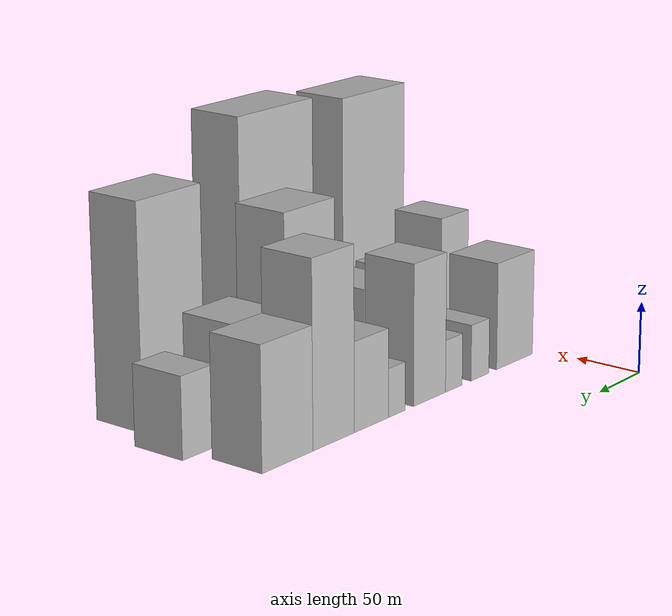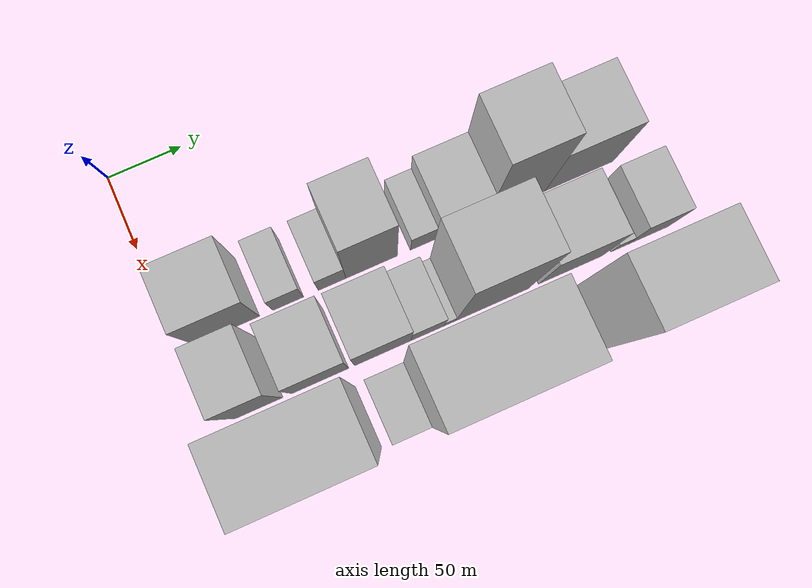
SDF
<sdf version="1.6">
 <world name="default">
  <model name="building_19">
   <static>1</static>
   <pose>100.0000 32.2616 0 0.000000 0.000000 0.000000</pose>
   <link name="link">
    <pose>0 0 37.50 0 0 0</pose>
    <collision name="collision"><geometry><box><size>40.0000 43.1738 75.0000</size></box></geometry></collision>
    <visual name="visual">
     <cast_shadows>0</cast_shadows>
     <geometry><box><size>40.0000 43.1738 75.0000</size></box></geometry>
     <material>
      <script>
       <uri>model://HANNAS_wall/materials/scripts</uri>
       <uri>model://HANNAS_wall/materials/textures</uri>
       <name>vrc/HANNAS_wall</name>
      </script>
     </material>
    </visual>
   </link>
  </model>
  <model name="building_20">
   <static>1</static>
   <pose>100.0000 73.1810 0 0.000000 0.000000 0.000000</pose>
   <link name="link">
    <pose>0 0 19.50 0 0 0</pose>
    <collision name="collision"><geometry><box><size>40.0000 20.6649 39.0000</size></box></geometry></collision>
    <visual name="visual">
     <cast_shadows>0</cast_shadows>
     <geometry><box><size>40.0000 20.6649 39.0000</size></box></geometry>
     <material>
      <script>
       <uri>model://HANNAS_wall/materials/scripts</uri>
       <uri>model://HANNAS_wall/materials/textures</uri>
       <name>vrc/HANNAS_wall</name>
      </script>
     </material>
    </visual>
   </link>
  </model>
  <model name="building_21">
   <static>1</static>
   <pose>100.0000 102.8595 0 0.000000 0.000000 0.000000</pose>
   <link name="link">
    <pose>0 0 18.00 0 0 0</pose>
    <collision name="collision"><geometry><box><size>40.0000 18.6922 36.0000</size></box></geometry></collision>
    <visual name="visual">
     <cast_shadows>0</cast_shadows>
     <geometry><box><size>40.0000 18.6922 36.0000</size></box></geometry>
     <material>
      <script>
       <uri>model://HANNAS_wall/materials/scripts</uri>
       <uri>model://HANNAS_wall/materials/textures</uri>
       <name>vrc/HANNAS_wall</name>
      </script>
     </material>
    </visual>
   </link>
  </model>
  <model name="building_22">
   <static>1</static>
   <pose>100.0000 129.7020 0 0.000000 0.000000 0.000000</pose>
   <link name="link">
    <pose>0 0 48.00 0 0 0</pose>
    <collision name="collision"><geometry><box><size>40.0000 34.9927 96.0000</size></box></geometry></collision>
    <visual name="visual">
     <cast_shadows>0</cast_shadows>
     <geometry><box><size>40.0000 34.9927 96.0000</size></box></geometry>
     <material>
      <script>
       <uri>model://HANNAS_wall/materials/scripts</uri>
       <uri>model://HANNAS_wall/materials/textures</uri>
       <name>vrc/HANNAS_wall</name>
      </script>
     </material>
    </visual>
   </link>
  </model>
  <model name="building_23">
   <static>1</static>
   <pose>100.0000 164.9879 0 0.000000 0.000000 0.000000</pose>
   <link name="link">
    <pose>0 0 16.50 0 0 0</pose>
    <collision name="collision"><geometry><box><size>40.0000 17.5790 33.0000</size></box></geometry></collision>
    <visual name="visual">
     <cast_shadows>0</cast_shadows>
     <geometry><box><size>40.0000 17.5790 33.0000</size></box></geometry>
     <material>
      <script>
       <uri>model://HANNAS_wall/materials/scripts</uri>
       <uri>model://HANNAS_wall/materials/textures</uri>
       <name>vrc/HANNAS_wall</name>
      </script>
     </material>
    </visual>
   </link>
  </model>
  <model name="building_24">
   <static>1</static>
   <pose>100.0000 191.1892 0 0.000000 0.000000 0.000000</pose>
   <link name="link">
    <pose>0 0 30.00 0 0 0</pose>
    <collision name="collision"><geometry><box><size>40.0000 34.8237 60.0000</size></box></geometry></collision>
    <visual name="visual">
     <cast_shadows>0</cast_shadows>
     <geometry><box><size>40.0000 34.8237 60.0000</size></box></geometry>
     <material>
      <script>
       <uri>model://HANNAS_wall/materials/scripts</uri>
       <uri>model://HANNAS_wall/materials/textures</uri>
       <name>vrc/HANNAS_wall</name>
      </script>
     </material>
    </visual>
   </link>
  </model>
  <model name="building_25">
   <static>1</static>
   <pose>100.0000 228.8745 0 0.000000 0.000000 0.000000</pose>
   <link name="link">
    <pose>0 0 61.50 0 0 0</pose>
    <collision name="collision"><geometry><box><size>40.0000 40.5469 123.0000</size></box></geometry></collision>
    <visual name="visual">
     <cast_shadows>0</cast_shadows>
     <geometry><box><size>40.0000 40.5469 123.0000</size></box></geometry>
     <material>
      <script>
       <uri>model://HANNAS_wall/materials/scripts</uri>
       <uri>model://HANNAS_wall/materials/textures</uri>
       <name>vrc/HANNAS_wall</name>
      </script>
     </material>
    </visual>
   </link>
  </model>
  <model name="building_26">
   <static>1</static>
   <pose>100.0000 273.0367 0 0.000000 0.000000 0.000000</pose>
   <link name="link">
    <pose>0 0 40.50 0 0 0</pose>
    <collision name="collision"><geometry><box><size>40.0000 47.7774 81.0000</size></box></geometry></collision>
    <visual name="visual">
     <cast_shadows>0</cast_shadows>
     <geometry><box><size>40.0000 47.7774 81.0000</size></box></geometry>
     <material>
      <script>
       <uri>model://HANNAS_wall/materials/scripts</uri>
       <uri>model://HANNAS_wall/materials/textures</uri>
       <name>vrc/HANNAS_wall</name>
      </script>
     </material>
    </visual>
   </link>
  </model>
  <model name="building_52">
   <static>1</static>
   <pose>152.0000 31.6889 0 0.000000 0.000000 0.000000</pose>
   <link name="link">
    <pose>0 0 48.00 0 0 0</pose>
    <collision name="collision"><geometry><box><size>40.0000 31.4053 96.0000</size></box></geometry></collision>
    <visual name="visual">
     <cast_shadows>0</cast_shadows>
     <geometry><box><size>40.0000 31.4053 96.0000</size></box></geometry>
     <material>
      <script>
       <uri>model://HANNAS_wall/materials/scripts</uri>
       <uri>model://HANNAS_wall/materials/textures</uri>
       <name>vrc/HANNAS_wall</name>
      </script>
     </material>
    </visual>
   </link>
  </model>
  <model name="building_53">
   <static>1</static>
   <pose>152.0000 72.4123 0 0.000000 0.000000 0.000000</pose>
   <link name="link">
    <pose>0 0 34.50 0 0 0</pose>
    <collision name="collision"><geometry><box><size>40.0000 38.0416 69.0000</size></box></geometry></collision>
    <visual name="visual">
     <cast_shadows>0</cast_shadows>
     <geometry><box><size>40.0000 38.0416 69.0000</size></box></geometry>
     <material>
      <script>
       <uri>model://HANNAS_wall/materials/scripts</uri>
       <uri>model://HANNAS_wall/materials/textures</uri>
       <name>vrc/HANNAS_wall</name>
      </script>
     </material>
    </visual>
   </link>
  </model>
  <model name="building_54">
   <static>1</static>
   <pose>152.0000 114.3250 0 0.000000 0.000000 0.000000</pose>
   <link name="link">
    <pose>0 0 33.00 0 0 0</pose>
    <collision name="collision"><geometry><box><size>40.0000 37.7837 66.0000</size></box></geometry></collision>
    <visual name="visual">
     <cast_shadows>0</cast_shadows>
     <geometry><box><size>40.0000 37.7837 66.0000</size></box></geometry>
     <material>
      <script>
       <uri>model://HANNAS_wall/materials/scripts</uri>
       <uri>model://HANNAS_wall/materials/textures</uri>
       <name>vrc/HANNAS_wall</name>
      </script>
     </material>
    </visual>
   </link>
  </model>
  <model name="building_55">
   <static>1</static>
   <pose>152.0000 144.5423 0 0.000000 0.000000 0.000000</pose>
   <link name="link">
    <pose>0 0 21.00 0 0 0</pose>
    <collision name="collision"><geometry><box><size>40.0000 22.6509 42.0000</size></box></geometry></collision>
    <visual name="visual">
     <cast_shadows>0</cast_shadows>
     <geometry><box><size>40.0000 22.6509 42.0000</size></box></geometry>
     <material>
      <script>
       <uri>model://HANNAS_wall/materials/scripts</uri>
       <uri>model://HANNAS_wall/materials/textures</uri>
       <name>vrc/HANNAS_wall</name>
      </script>
     </material>
    </visual>
   </link>
  </model>
  <model name="building_56">
   <static>1</static>
   <pose>152.0000 159.6334 0 0.000000 0.000000 0.000000</pose>
   <link name="link">
    <pose>0 0 9.00 0 0 0</pose>
    <collision name="collision"><geometry><box><size>40.0000 7.5313 18.0000</size></box></geometry></collision>
    <visual name="visual">
     <cast_shadows>0</cast_shadows>
     <geometry><box><size>40.0000 7.5313 18.0000</size></box></geometry>
     <material>
      <script>
       <uri>model://HANNAS_wall/materials/scripts</uri>
       <uri>model://HANNAS_wall/materials/textures</uri>
       <name>vrc/HANNAS_wall</name>
      </script>
     </material>
    </visual>
   </link>
  </model>
  <model name="building_57">
   <static>1</static>
   <pose>152.0000 188.3692 0 0.000000 0.000000 0.000000</pose>
   <link name="link">
    <pose>0 0 67.50 0 0 0</pose>
    <collision name="collision"><geometry><box><size>40.0000 49.9403 135.0000</size></box></geometry></collision>
    <visual name="visual">
     <cast_shadows>0</cast_shadows>
     <geometry><box><size>40.0000 49.9403 135.0000</size></box></geometry>
     <material>
      <script>
       <uri>model://HANNAS_wall/materials/scripts</uri>
       <uri>model://HANNAS_wall/materials/textures</uri>
       <name>vrc/HANNAS_wall</name>
      </script>
     </material>
    </visual>
   </link>
  </model>
  <model name="building_58">
   <static>1</static>
   <pose>152.0000 242.3548 0 0.000000 0.000000 0.000000</pose>
   <link name="link">
    <pose>0 0 37.50 0 0 0</pose>
    <collision name="collision"><geometry><box><size>40.0000 44.0309 75.0000</size></box></geometry></collision>
    <visual name="visual">
     <cast_shadows>0</cast_shadows>
     <geometry><box><size>40.0000 44.0309 75.0000</size></box></geometry>
     <material>
      <script>
       <uri>model://HANNAS_wall/materials/scripts</uri>
       <uri>model://HANNAS_wall/materials/textures</uri>
       <name>vrc/HANNAS_wall</name>
      </script>
     </material>
    </visual>
   </link>
  </model>
  <model name="building_59">
   <static>1</static>
   <pose>152.0000 275.8309 0 0.000000 0.000000 0.000000</pose>
   <link name="link">
    <pose>0 0 12.00 0 0 0</pose>
    <collision name="collision"><geometry><box><size>40.0000 10.9214 24.0000</size></box></geometry></collision>
    <visual name="visual">
     <cast_shadows>0</cast_shadows>
     <geometry><box><size>40.0000 10.9214 24.0000</size></box></geometry>
     <material>
      <script>
       <uri>model://HANNAS_wall/materials/scripts</uri>
       <uri>model://HANNAS_wall/materials/textures</uri>
       <name>vrc/HANNAS_wall</name>
      </script>
     </material>
    </visual>
   </link>
  </model>
  <model name="building_60">
   <static>1</static>
   <pose>152.0000 295.7614 0 0.000000 0.000000 0.000000</pose>
   <link name="link">
    <pose>0 0 27.00 0 0 0</pose>
    <collision name="collision"><geometry><box><size>40.0000 28.9395 54.0000</size></box></geometry></collision>
    <visual name="visual">
     <cast_shadows>0</cast_shadows>
     <geometry><box><size>40.0000 28.9395 54.0000</size></box></geometry>
     <material>
      <script>
       <uri>model://HANNAS_wall/materials/scripts</uri>
       <uri>model://HANNAS_wall/materials/textures</uri>
       <name>vrc/HANNAS_wall</name>
      </script>
     </material>
    </visual>
   </link>
  </model>
  <model name="building_83">
   <static>1</static>
   <pose>204.0000 10.4153 0 0.000000 0.000000 0.000000</pose>
   <link name="link">
    <pose>0 0 22.50 0 0 0</pose>
    <collision name="collision"><geometry><box><size>40.0000 23.0629 45.0000</size></box></geometry></collision>
    <visual name="visual">
     <cast_shadows>0</cast_shadows>
     <geometry><box><size>40.0000 23.0629 45.0000</size></box></geometry>
     <material>
      <script>
       <uri>model://HANNAS_wall/materials/scripts</uri>
       <uri>model://HANNAS_wall/materials/textures</uri>
       <name>vrc/HANNAS_wall</name>
      </script>
     </material>
    </visual>
   </link>
  </model>
  <model name="building_84">
   <static>1</static>
   <pose>204.0000 56.2340 0 0.000000 0.000000 0.000000</pose>
   <link name="link">
    <pose>0 0 90.00 0 0 0</pose>
    <collision name="collision"><geometry><box><size>40.0000 68.5745 180.0000</size></box></geometry></collision>
    <visual name="visual">
     <cast_shadows>0</cast_shadows>
     <geometry><box><size>40.0000 68.5745 180.0000</size></box></geometry>
     <material>
      <script>
       <uri>model://HANNAS_wall/materials/scripts</uri>
       <uri>model://HANNAS_wall/materials/textures</uri>
       <name>vrc/HANNAS_wall</name>
      </script>
     </material>
    </visual>
   </link>
  </model>
  <model name="building_85">
   <static>1</static>
   <pose>204.0000 109.8151 0 0.000000 0.000000 0.000000</pose>
   <link name="link">
    <pose>0 0 22.50 0 0 0</pose>
    <collision name="collision"><geometry><box><size>40.0000 24.5877 45.0000</size></box></geometry></collision>
    <visual name="visual">
     <cast_shadows>0</cast_shadows>
     <geometry><box><size>40.0000 24.5877 45.0000</size></box></geometry>
     <material>
      <script>
       <uri>model://HANNAS_wall/materials/scripts</uri>
       <uri>model://HANNAS_wall/materials/textures</uri>
       <name>vrc/HANNAS_wall</name>
      </script>
     </material>
    </visual>
   </link>
  </model>
  <model name="building_86">
   <static>1</static>
   <pose>204.0000 159.2760 0 0.000000 0.000000 0.000000</pose>
   <link name="link">
    <pose>0 0 93.00 0 0 0</pose>
    <collision name="collision"><geometry><box><size>40.0000 74.3343 186.0000</size></box></geometry></collision>
    <visual name="visual">
     <cast_shadows>0</cast_shadows>
     <geometry><box><size>40.0000 74.3343 186.0000</size></box></geometry>
     <material>
      <script>
       <uri>model://HANNAS_wall/materials/scripts</uri>
       <uri>model://HANNAS_wall/materials/textures</uri>
       <name>vrc/HANNAS_wall</name>
      </script>
     </material>
    </visual>
   </link>
  </model>
  <model name="building_87">
   <static>1</static>
   <pose>204.0000 207.7874 0 0.000000 0.000000 0.000000</pose>
   <link name="link">
    <pose>0 0 22.50 0 0 0</pose>
    <collision name="collision"><geometry><box><size>40.0000 22.6885 45.0000</size></box></geometry></collision>
    <visual name="visual">
     <cast_shadows>0</cast_shadows>
     <geometry><box><size>40.0000 22.6885 45.0000</size></box></geometry>
     <material>
      <script>
       <uri>model://HANNAS_wall/materials/scripts</uri>
       <uri>model://HANNAS_wall/materials/textures</uri>
       <name>vrc/HANNAS_wall</name>
      </script>
     </material>
    </visual>
   </link>
  </model>
  <model name="building_88">
   <static>1</static>
   <pose>204.0000 229.4666 0 0.000000 0.000000 0.000000</pose>
   <link name="link">
    <pose>0 0 7.50 0 0 0</pose>
    <collision name="collision"><geometry><box><size>40.0000 6.6697 15.0000</size></box></geometry></collision>
    <visual name="visual">
     <cast_shadows>0</cast_shadows>
     <geometry><box><size>40.0000 6.6697 15.0000</size></box></geometry>
     <material>
      <script>
       <uri>model://HANNAS_wall/materials/scripts</uri>
       <uri>model://HANNAS_wall/materials/textures</uri>
       <name>vrc/HANNAS_wall</name>
      </script>
     </material>
    </visual>
   </link>
  </model>
  <model name="building_89">
   <static>1</static>
   <pose>204.0000 261.8028 0 0.000000 0.000000 0.000000</pose>
   <link name="link">
    <pose>0 0 75.00 0 0 0</pose>
    <collision name="collision"><geometry><box><size>40.0000 58.0028 150.0000</size></box></geometry></collision>
    <visual name="visual">
     <cast_shadows>0</cast_shadows>
     <geometry><box><size>40.0000 58.0028 150.0000</size></box></geometry>
     <material>
      <script>
       <uri>model://HANNAS_wall/materials/scripts</uri>
       <uri>model://HANNAS_wall/materials/textures</uri>
       <name>vrc/HANNAS_wall</name>
      </script>
     </material>
    </visual>
   </link>
  </model>
 </world>
</sdf>
